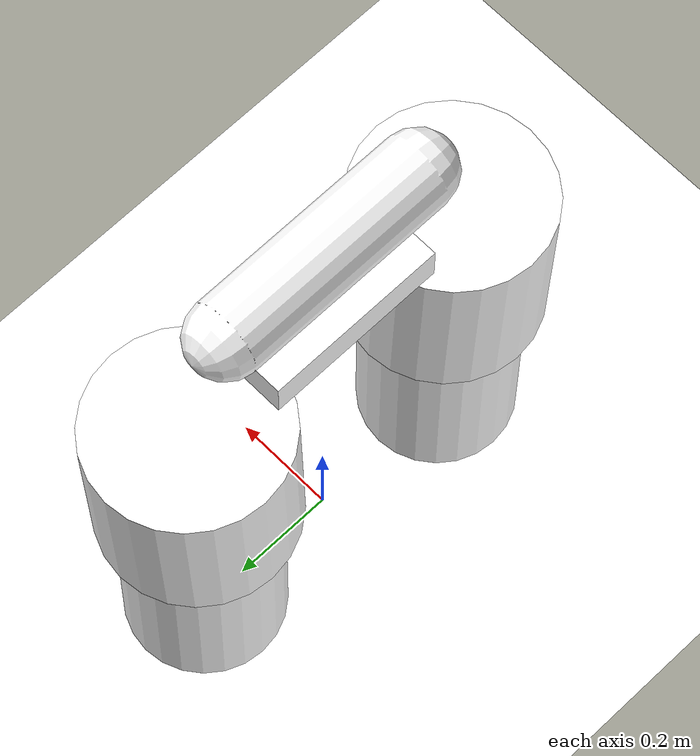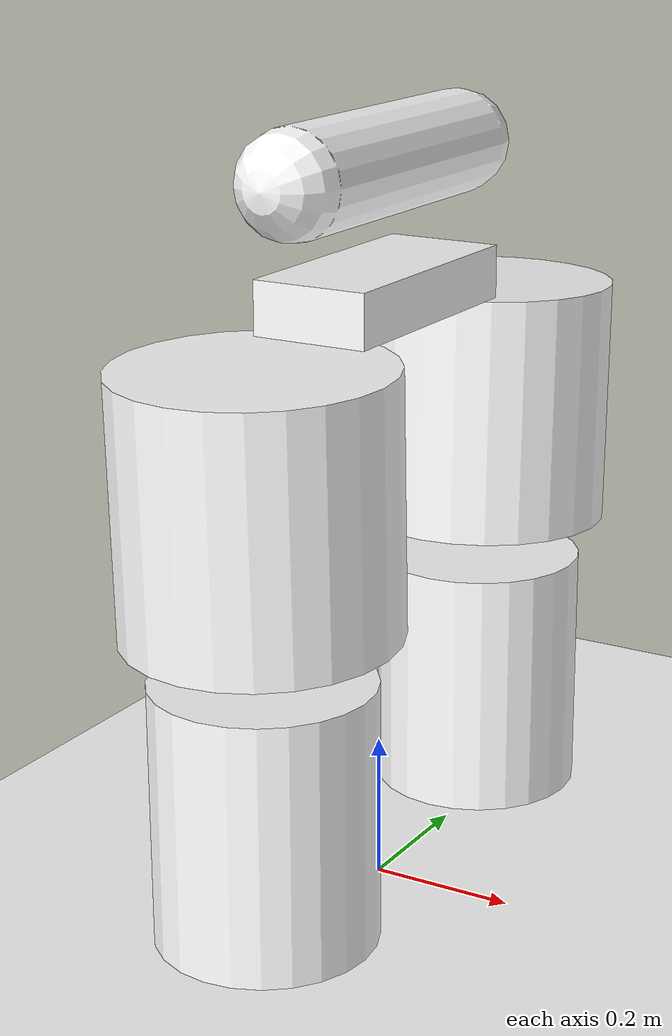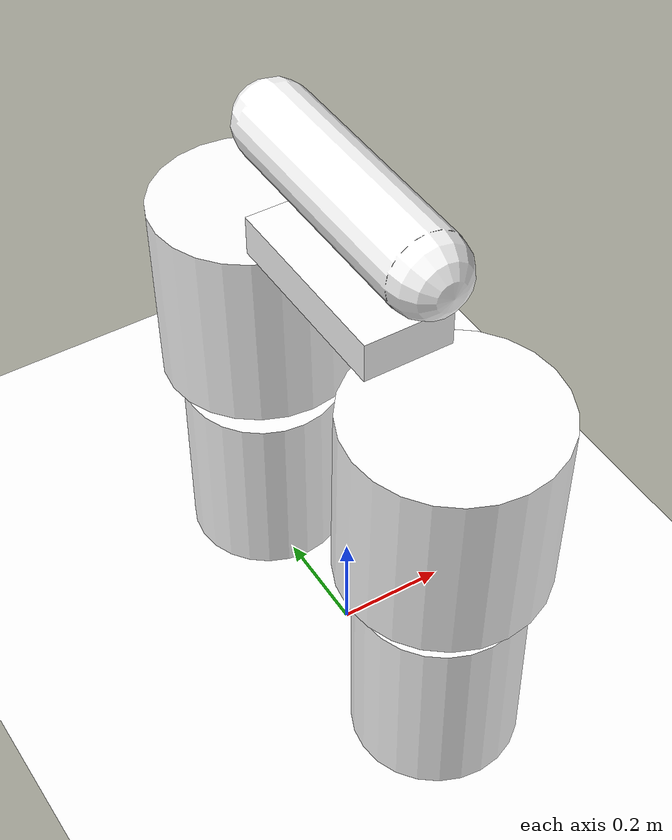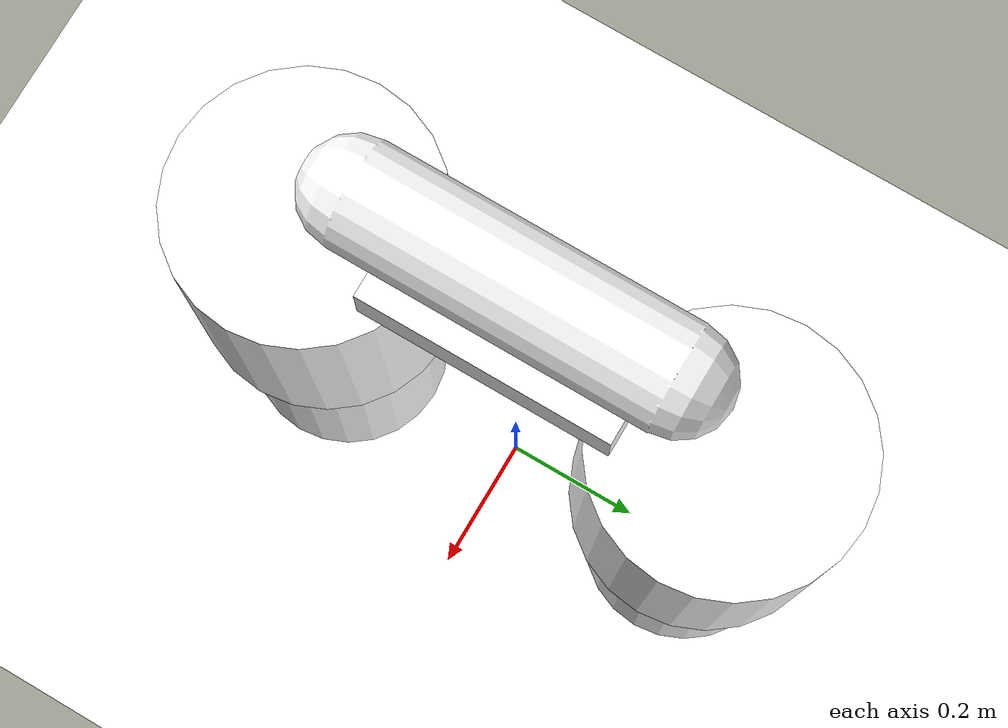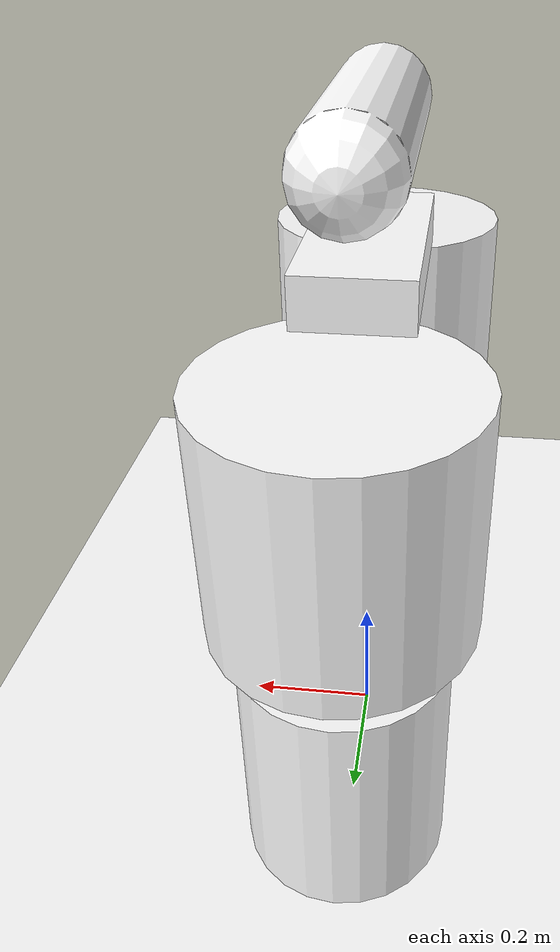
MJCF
<mujoco model="Humanoid">

  <compiler angle="degree" inertiafromgeom="true" coordinate="local" />

  <option timestep="0.005" />

  <visual>

    <map znear="0.1" zfar="2000" />

    <rgba haze="0.15 0.25 0.35 1" />

    <quality shadowsize="4096" />

    <global offwidth="2560" offheight="1440" elevation="-20" azimuth="120" />

    <scale forcewidth="0.1" contactwidth="0.1" contactheight="0.1" connect="0.1" com="0.1" />
  </visual>

  <statistic extent="50" center="0 0 1" />

  <asset>

    <texture type="skybox" builtin="gradient" rgb1="0.3 0.5 0.7" rgb2="0 0 0" width="512" height="512" />

    <texture name="texplane" type="2d" builtin="checker" rgb1=".2 .3 .4" rgb2=".1 0.15 0.2" width="512" height="512" mark="cross" markrgb=".8 .8 .8" />

    <material name="floor" texture="texplane" texuniform="true" />
    <material name="body" rgba="1 1 1 1" />
  </asset>

  <default>

    <joint armature="1" damping="5" limited="true" />

    <geom conaffinity="1" condim="3" contype="1" margin="0.001" rgba="1 1 1 1" material="body" />

    <motor ctrllimited="true" ctrlrange="-1 1" />
  </default>

  <worldbody>

    <light diffuse=".5 .5 .5" pos="0 0 3" dir="0 0 -1" />

    <geom name="floor" pos="0 0 0" size="50 50 .125" type="plane" material="floor" condim="3" />

    <body name="torso" pos="0 0 1.0">

      <freejoint name="root" />

      <geom name="torso" type="capsule" fromto="0 -.21 0 0 .21 0" size="0.07" mass="10" rgba="1 1 1 1" />

      <camera name="track" mode="fixed" pos="0 -15 5" zaxis="0 0 1" />

      <body name="pelvis" pos="0 0 -0.165">

        <geom name="pelvis" type="box" size="0.08 0.175 0.036" mass="8" rgba="1 1 1 1" />

        <body name="thigh_right" pos="0 -0.3 -0.04">

          <joint name="hip_x_right" axis="1 0 0" range="-180 180" pos="0 0 0" stiffness="1000" damping="100" />
          <joint name="hip_z_right" axis="0 0 1" range="-180 180" pos="0 0 0" stiffness="1000" damping="100" />
          <joint name="hip_y_right" axis="0 1 0" range="-180 180" pos="0 0 0" stiffness="1000" damping="100" />

          <geom name="thigh_right" type="cylinder" fromto="0 0 0 0 0.01 -0.34" size="0.18" mass="4.5" rgba="1 1 1 1" />

          <body name="shin_right" pos="0 0.01 -0.403">

            <joint name="knee_right" pos="0 0 .02" axis="0 -1 0" range="-180 180" stiffness="1000" damping="100" />

            <geom name="shin_right" type="cylinder" fromto="0 0 0 0 0 -0.35" size="0.147" mass="3" rgba="1 1 1 1" friction="1 0.2 0.0001" />
          </body>
        </body>

        <body name="thigh_left" pos="0 0.3 -0.04">

          <joint name="hip_x_left" axis="-1 0 0" range="-180 180" pos="0 0 0" stiffness="1000" damping="100" />
          <joint name="hip_z_left" axis="0 0 -1" range="-180 180" pos="0 0 0" stiffness="1000" damping="100" />
          <joint name="hip_y_left" axis="0 1 0" range="-180 180" pos="0 0 0" stiffness="1000" damping="100" />

          <geom name="thigh_left" type="cylinder" fromto="0 0 0 0 -0.01 -0.34" size="0.18" mass="4.5" rgba="1 1 1 1" />

          <body name="shin_left" pos="0 -0.01 -0.403">

            <joint name="knee_left" pos="0 0 .02" axis="0 -1 0" range="-180 180" stiffness="1000" damping="100" />

            <geom name="shin_left" type="cylinder" fromto="0 0 0 0 0 -0.35" size="0.147" mass="3" rgba="1 1 1 1" friction="1 0.2 0.0001" />
          </body>
        </body>
      </body>
    </body>
  </worldbody>

  <actuator>

    <position name="hip_x_right" joint="hip_x_right" kp="19.6" ctrlrange="-180 180" />
    <position name="hip_z_right" joint="hip_z_right" kp="19.6" ctrlrange="-180 180" />
    <position name="hip_y_right" joint="hip_y_right" kp="19.6" ctrlrange="-180 180" />
    <position name="knee_right" joint="knee_right" kp="20.2" ctrlrange="-180 180" />

    <position name="hip_x_left" joint="hip_x_left" kp="19.6" ctrlrange="-180 180" />
    <position name="hip_z_left" joint="hip_z_left" kp="19.6" ctrlrange="-180 180" />
    <position name="hip_y_left" joint="hip_y_left" kp="19.6" ctrlrange="-180 180" />
    <position name="knee_left" joint="knee_left" kp="20.2" ctrlrange="-180 180" />
  </actuator>
</mujoco>
